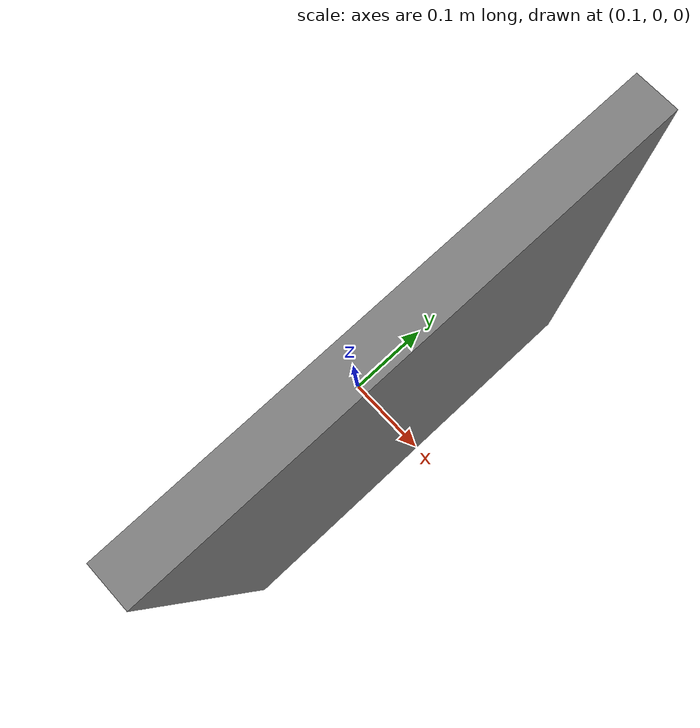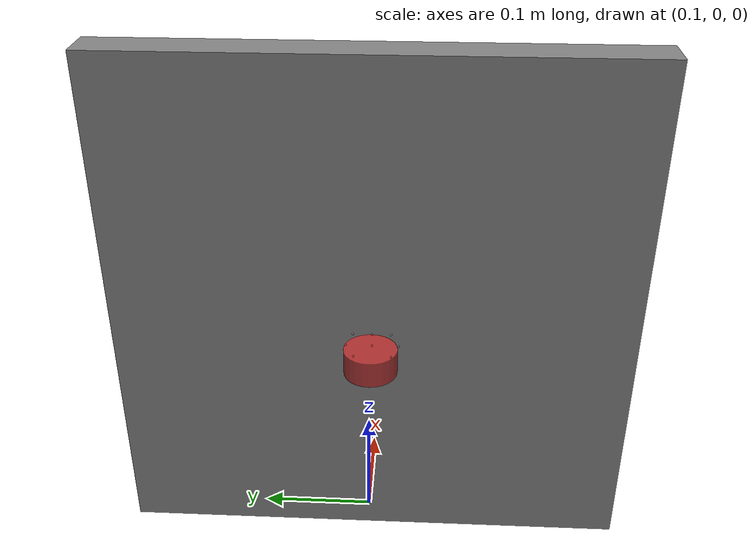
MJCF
<mujoco model="zippy wall scene">
  <include file="test_magnet_wall_env.xml" />

  <statistic center="0 0 0.2" extent="0.6" />

  <visual>
    <headlight diffuse="0.7 0.7 0.7" ambient="0.3 0.3 0.3" specular="0 0 0" />
    <rgba haze="0.95 0.95 0.95 1" />
    <global azimuth="90" elevation="0" />
  </visual>

  <asset>
    <texture type="skybox" builtin="gradient" rgb1="1 1 1" rgb2="1 1 1" width="512" height="3072" />
  </asset>

  <worldbody>
    <light pos="0 0 1.5" dir="0 0 -1" directional="true" />
  </worldbody>
</mujoco>

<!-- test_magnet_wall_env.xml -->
<mujoco model="magnet_wall_env">
    <compiler angle="radian"/>
    <option integrator="implicit" cone="elliptic" impratio="10" noslip_iterations="15"/>

    <default class="main">
        <geom condim="6"/>
    </default>

    <visual>
        <global offwidth="1920" offheight="1080"/>
    </visual>

    <worldbody>

        <!-- === Vertical Magnetic Wall === -->
        <!-- Positioned vertically, normal along +X -->
        <body name="wall" pos="0.175 0 0.175">
            <geom name="magnetic_wall" type="box" size="0.02 0.25 0.25"/>
        </body>

        <!-- === Magnet wheel adhering to wall === -->
        <!-- Axis along X, with ~2 mm air gap before contact -->
        <body name="magnet_wheel" pos="0.125 0 0.15" zaxis="0 0 1">
            <inertial mass="0.33" pos="0 0 0"
                    diaginertia="0.000069 0.000103 0.000069"/>

            <freejoint/>

            <!-- Main magnet cylinder -->
             <geom name="magnet_geom" type="cylinder" size="0.025 0.0125"
                rgba="0.8 0.2 0.2 0.8"
                friction="1 0.01 0.01"/>

            <!-- Magnetic contact points — front face touching wall -->
            <geom name="mag_pt0" type="sphere" size="0.001" pos="0.025  0.018  0.0125"/>
            <geom name="mag_pt1" type="sphere" size="0.001" pos="0.025 -0.018  0.0125"/>
            <geom name="mag_pt2" type="sphere" size="0.001" pos="0.025  0.018 -0.0125"/>
            <geom name="mag_pt3" type="sphere" size="0.001" pos="0.025 -0.018 -0.0125"/>
            <geom name="mag_pt4" type="sphere" size="0.001" pos="0.025  0.000  0.000"/>
            <geom name="mag_pt5" type="sphere" size="0.001" pos="0.025  0.025  0.000"/>
            <geom name="mag_pt6" type="sphere" size="0.001" pos="0.025 -0.025  0.000"/>
            <geom name="mag_pt7" type="sphere" size="0.001" pos="0.025  0.000  0.0125"/>
        </body>

    </worldbody>
</mujoco>
